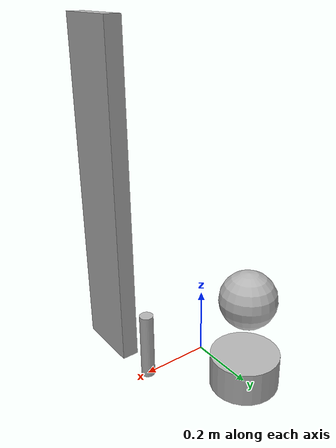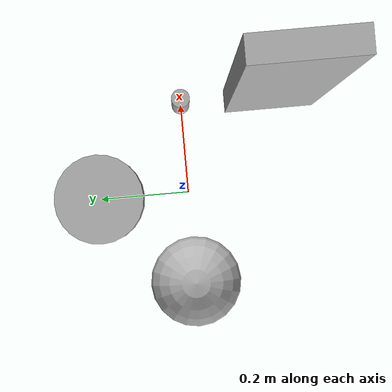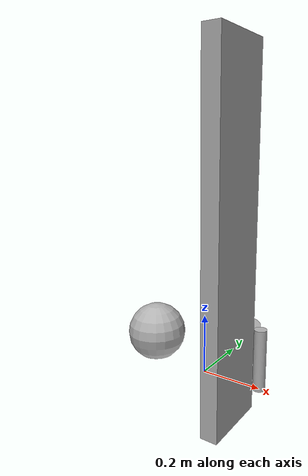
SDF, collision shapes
<?xml version="1.0" ?>
<sdf version="1.4">
  <model name='box'>
    <pose>0.2 -0.2 0.5 0 0 0</pose>
    <link name='box'>
      <pose>0 0 0 0 0 0</pose>
        <inertial>
          <mass>1.</mass>
        </inertial>
        <visual name='box'>
          <pose>0 0 0 0 0 0</pose>
          <geometry>
            <box>
              <size>0.05 0.2 1.</size>
            </box>
          </geometry>
          <material/>
        </visual>
        <collision name='box'>
          <geometry>
            <box>
              <size>0.05 0.2 1.</size>
            </box>
          </geometry>
        </collision>
    </link>
    <static>1</static>
  </model>
  <model name='sphere'>
    <pose>-0.2 0 0.1 0 0 0</pose>
    <link name='sphere'>
      <pose>0 0 0 0 0 0</pose>
        <inertial>
          <mass>1.</mass>
        </inertial>
        <visual name='sphere'>
          <pose>0 0 0 0 0 0</pose>
          <geometry>
            <sphere>
              <radius>0.1</radius>
            </sphere>
          </geometry>
          <material/>
        </visual>
        <collision name='sphere'>
          <geometry>
            <sphere>
              <radius>0.1</radius>
            </sphere>
          </geometry>
        </collision>
    </link>
    <static>1</static>
  </model>
  <model name='cylinder'>
    <pose>0 0.2 0.05 0 0 0</pose>
    <link name='cylinder'>
      <pose>0 0 0 0 0 0</pose>
        <inertial>
          <mass>1.</mass>
        </inertial>
        <visual name='cylinder'>
          <pose>0 0 0 0 0 0</pose>
          <geometry>
            <cylinder>
	      <length>0.1</length>
              <radius>0.1</radius>
            </cylinder>
          </geometry>
          <material/>
        </visual>
        <collision name='cylinder'>
          <geometry>
            <cylinder>
	      <length>0.1</length>
              <radius>0.1</radius>
            </cylinder>
          </geometry>
        </collision>
    </link>
    <static>1</static>
  </model>
  <model name='bottle'>
    <pose>0.2 0 0.1 0 0 0</pose>
    <link name='bottle'>
      <pose>0 0 0 0 0 0</pose>
      <inertial>
        <mass>0.5</mass>
      </inertial>
      <visual name='bottle'>
        <pose>0 0 0 0 0 0</pose>
        <geometry>
          <mesh>
            <uri>meshes/bottle.obj</uri>
          </mesh>
        </geometry>
        <material/>
      </visual>
      <collision name='bottle'>
        <laser_retro>0</laser_retro>
        <max_contacts>10</max_contacts>
        <pose frame=''>0 0 0 0 0 0</pose>
        <geometry>
          <cylinder>
	    <length>0.2</length>
            <radius>0.02</radius>
          </cylinder>
        </geometry>
      </collision>
    </link>
    <static>1</static>
  </model>
</sdf>
